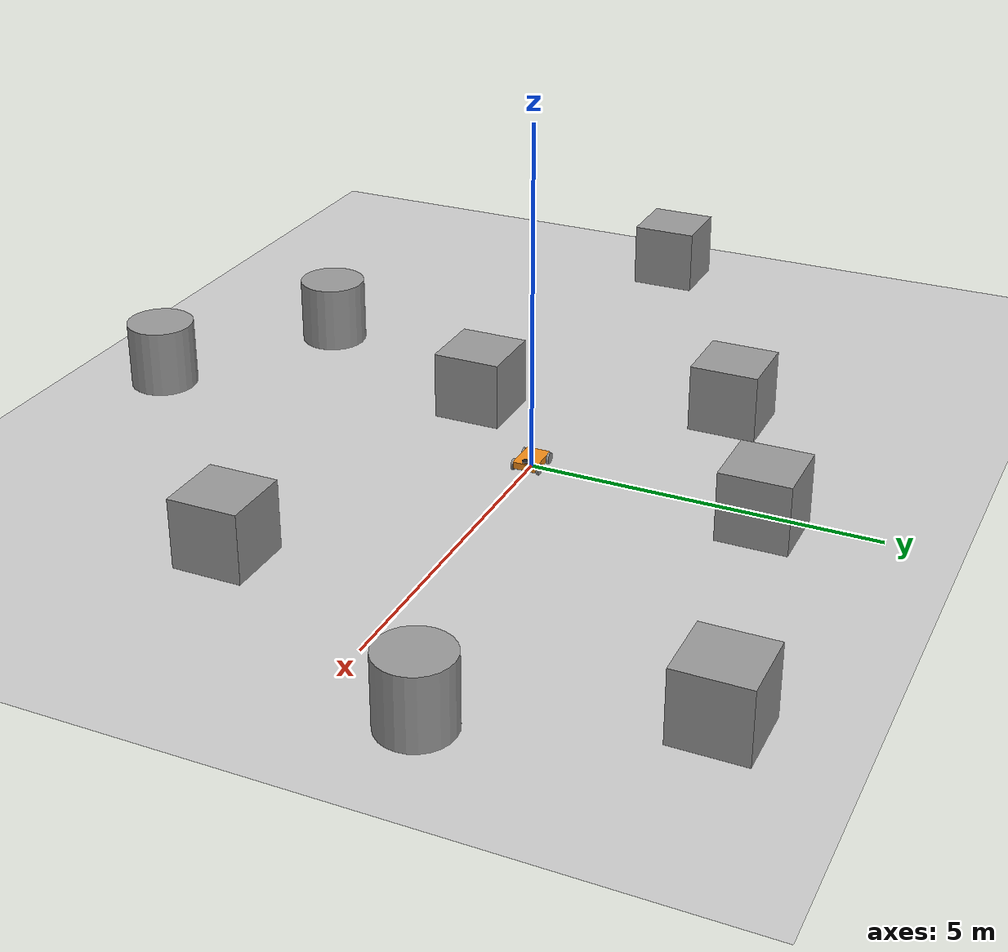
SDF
<sdf version="1.7">
 <world name="default">
  <light name="sun" type="directional">
   <pose>0 0 10 0 -0 0</pose>
   <diffuse>0.8 0.8 0.8 1</diffuse>
   <specular>0.2 0.2 0.2 1</specular>
   <attenuation>
    <range>1000</range>
    <constant>0.9</constant>
    <linear>0.01</linear>
    <quadratic>0.001</quadratic>
   </attenuation>
   <direction>-0.5 0.1 -0.9</direction>
   <spot><inner_angle>0</inner_angle><outer_angle>0</outer_angle><falloff>0</falloff></spot>
  </light>
  <model name="ground_plane">
   <static>1</static>
   <link name="link">
    <collision name="collision">
     <geometry><plane><normal>0 0 1</normal><size>100 100</size></plane></geometry>
     <surface>
      <contact><collide_bitmask>65535</collide_bitmask></contact>
      <friction><ode><mu>100</mu><mu2>50</mu2></ode></friction>
     </surface>
    </collision>
    <visual name="visual">
     <cast_shadows>0</cast_shadows>
     <geometry><plane><normal>0 0 1</normal><size>100 100</size></plane></geometry>
     <material>
      <script><uri>file://media/materials/scripts/gazebo.material</uri><name>Gazebo/Grey</name></script>
     </material>
    </visual>
   </link>
  </model>
  <gravity>0 0 -9.8</gravity>
  <magnetic_field>6e-06 2.3e-05 -4.2e-05</magnetic_field>
  <atmosphere type="adiabatic"/>
  <physics type="ode">
   <max_step_size>0.001</max_step_size>
   <real_time_factor>1</real_time_factor>
   <real_time_update_rate>1000</real_time_update_rate>
  </physics>
  <scene><ambient>0.4 0.4 0.4 1</ambient><background>0.7 0.7 0.7 1</background><shadows>1</shadows></scene>
  <audio><device>default</device></audio>
  <spherical_coordinates>
   <surface_model>EARTH_WGS84</surface_model>
   <latitude_deg>0</latitude_deg>
   <longitude_deg>0</longitude_deg>
   <elevation>0</elevation>
   <heading_deg>0</heading_deg>
  </spherical_coordinates>
  <model name="my_bot">
   <link name="base_footprint">
    <inertial>
     <pose>0.007692 0 0.102692 0 -0 0</pose>
     <mass>5.2</mass>
     <inertia>
      <ixx>0.109407</ixx>
      <ixy>0</ixy>
      <ixz>-0.00269231</ixz>
      <iyy>0.163975</iyy>
      <iyz>0</iyz>
      <izz>0.0631506</izz>
     </inertia>
    </inertial>
    <collision name="base_footprint_fixed_joint_lump__base_link_collision">
     <pose>0 0 0.1 0 -0 0</pose>
     <geometry><box><size>0.5 0.35 0.1</size></box></geometry>
    </collision>
    <collision name="base_footprint_fixed_joint_lump__laser_frame_collision_1">
     <pose>0.2 0 0.17 0 -0 0</pose>
     <geometry><cylinder><length>0.02</length><radius>0.05</radius></cylinder></geometry>
    </collision>
    <visual name="base_footprint_fixed_joint_lump__base_link_visual">
     <pose>0 0 0.1 0 -0 0</pose>
     <geometry><box><size>0.5 0.35 0.1</size></box></geometry>
     <material>
      <script><name>Gazebo/Orange</name><uri>file://media/materials/scripts/gazebo.material</uri></script>
     </material>
    </visual>
    <visual name="base_footprint_fixed_joint_lump__laser_frame_visual_1">
     <pose>0.2 0 0.17 0 -0 0</pose>
     <geometry><cylinder><length>0.02</length><radius>0.05</radius></cylinder></geometry>
     <material>
      <script><name>Gazebo/Black</name><uri>file://media/materials/scripts/gazebo.material</uri></script>
     </material>
    </visual>
    <sensor name="lidar_sensor" type="ray">
     <visualize>1</visualize>
     <update_rate>10</update_rate>
     <ray>
      <scan>
       <horizontal>
        <samples>360</samples>
        <min_angle>-3.14</min_angle>
        <max_angle>3.14</max_angle>
        <resolution>1</resolution>
       </horizontal>
       <vertical><samples>1</samples><min_angle>0</min_angle><max_angle>0</max_angle></vertical>
      </scan>
      <range><min>0.1</min><max>10</max></range>
     </ray>
     <plugin name="laser_controller" filename="libgazebo_ros_ray_sensor.so">
      <ros><argument>~/out:=scan</argument></ros>
      <output_type>sensor_msgs/LaserScan</output_type>
      <frame_name>laser_frame</frame_name>
     </plugin>
     <pose>0.2 0 0.17 0 -0 0</pose>
    </sensor>
   </link>
   <joint name="base_left_wheel_f_joint" type="revolute">
    <pose relative_to="base_footprint">0.18 0.19 0.08 0 -0 0</pose>
    <parent>base_footprint</parent>
    <child>left_f_wheel_link</child>
    <axis>
     <xyz>0 1 0</xyz>
     <limit><lower>-1e+16</lower><upper>1e+16</upper></limit>
     <dynamics><spring_reference>0</spring_reference><spring_stiffness>0</spring_stiffness></dynamics>
    </axis>
   </joint>
   <link name="left_f_wheel_link">
    <pose relative_to="base_left_wheel_f_joint">0 0 0 0 -0 0</pose>
    <inertial>
     <pose>0 0 0 1.5708 -0 0</pose>
     <mass>0.5</mass>
     <inertia>
      <ixx>0.0008375</ixx>
      <ixy>0</ixy>
      <ixz>0</ixz>
      <iyy>0.0008375</iyy>
      <iyz>0</iyz>
      <izz>0.0016</izz>
     </inertia>
    </inertial>
    <collision name="left_f_wheel_link_collision">
     <pose>0 0 0 1.5708 -0 0</pose>
     <geometry><cylinder><length>0.03</length><radius>0.08</radius></cylinder></geometry>
    </collision>
    <visual name="left_f_wheel_link_visual">
     <pose>0 0 0 1.5708 -0 0</pose>
     <geometry><cylinder><length>0.03</length><radius>0.08</radius></cylinder></geometry>
     <material>
      <script><name>Gazebo/Gray</name><uri>file://media/materials/scripts/gazebo.material</uri></script>
     </material>
    </visual>
   </link>
   <joint name="base_left_wheel_r_joint" type="revolute">
    <pose relative_to="base_footprint">-0.18 0.19 0.08 0 -0 0</pose>
    <parent>base_footprint</parent>
    <child>left_r_wheel_link</child>
    <axis>
     <xyz>0 1 0</xyz>
     <limit><lower>-1e+16</lower><upper>1e+16</upper></limit>
     <dynamics><spring_reference>0</spring_reference><spring_stiffness>0</spring_stiffness></dynamics>
    </axis>
   </joint>
   <link name="left_r_wheel_link">
    <pose relative_to="base_left_wheel_r_joint">0 0 0 0 -0 0</pose>
    <inertial>
     <pose>0 0 0 1.5708 -0 0</pose>
     <mass>0.5</mass>
     <inertia>
      <ixx>0.0008375</ixx>
      <ixy>0</ixy>
      <ixz>0</ixz>
      <iyy>0.0008375</iyy>
      <iyz>0</iyz>
      <izz>0.0016</izz>
     </inertia>
    </inertial>
    <collision name="left_r_wheel_link_collision">
     <pose>0 0 0 1.5708 -0 0</pose>
     <geometry><cylinder><length>0.03</length><radius>0.08</radius></cylinder></geometry>
    </collision>
    <visual name="left_r_wheel_link_visual">
     <pose>0 0 0 1.5708 -0 0</pose>
     <geometry><cylinder><length>0.03</length><radius>0.08</radius></cylinder></geometry>
     <material>
      <script><name>Gazebo/Gray</name><uri>file://media/materials/scripts/gazebo.material</uri></script>
     </material>
    </visual>
   </link>
   <joint name="base_right_wheel_f_joint" type="revolute">
    <pose relative_to="base_footprint">0.18 -0.19 0.08 0 -0 0</pose>
    <parent>base_footprint</parent>
    <child>right_f_wheel_link</child>
    <axis>
     <xyz>0 1 0</xyz>
     <limit><lower>-1e+16</lower><upper>1e+16</upper></limit>
     <dynamics><spring_reference>0</spring_reference><spring_stiffness>0</spring_stiffness></dynamics>
    </axis>
   </joint>
   <link name="right_f_wheel_link">
    <pose relative_to="base_right_wheel_f_joint">0 0 0 0 -0 0</pose>
    <inertial>
     <pose>0 0 0 1.5708 -0 0</pose>
     <mass>0.5</mass>
     <inertia>
      <ixx>0.0008375</ixx>
      <ixy>0</ixy>
      <ixz>0</ixz>
      <iyy>0.0008375</iyy>
      <iyz>0</iyz>
      <izz>0.0016</izz>
     </inertia>
    </inertial>
    <collision name="right_f_wheel_link_collision">
     <pose>0 0 0 1.5708 -0 0</pose>
     <geometry><cylinder><length>0.03</length><radius>0.08</radius></cylinder></geometry>
    </collision>
    <visual name="right_f_wheel_link_visual">
     <pose>0 0 0 1.5708 -0 0</pose>
     <geometry><cylinder><length>0.03</length><radius>0.08</radius></cylinder></geometry>
     <material>
      <script><name>Gazebo/Gray</name><uri>file://media/materials/scripts/gazebo.material</uri></script>
     </material>
    </visual>
   </link>
   <joint name="base_right_wheel_r_joint" type="revolute">
    <pose relative_to="base_footprint">-0.18 -0.19 0.08 0 -0 0</pose>
    <parent>base_footprint</parent>
    <child>right_r_wheel_link</child>
    <axis>
     <xyz>0 1 0</xyz>
     <limit><lower>-1e+16</lower><upper>1e+16</upper></limit>
     <dynamics><spring_reference>0</spring_reference><spring_stiffness>0</spring_stiffness></dynamics>
    </axis>
   </joint>
   <link name="right_r_wheel_link">
    <pose relative_to="base_right_wheel_r_joint">0 0 0 0 -0 0</pose>
    <inertial>
     <pose>0 0 0 1.5708 -0 0</pose>
     <mass>0.5</mass>
     <inertia>
      <ixx>0.0008375</ixx>
      <ixy>0</ixy>
      <ixz>0</ixz>
      <iyy>0.0008375</iyy>
      <iyz>0</iyz>
      <izz>0.0016</izz>
     </inertia>
    </inertial>
    <collision name="right_r_wheel_link_collision">
     <pose>0 0 0 1.5708 -0 0</pose>
     <geometry><cylinder><length>0.03</length><radius>0.08</radius></cylinder></geometry>
    </collision>
    <visual name="right_r_wheel_link_visual">
     <pose>0 0 0 1.5708 -0 0</pose>
     <geometry><cylinder><length>0.03</length><radius>0.08</radius></cylinder></geometry>
     <material>
      <script><name>Gazebo/Gray</name><uri>file://media/materials/scripts/gazebo.material</uri></script>
     </material>
    </visual>
   </link>
   <plugin name="front_wheel" filename="libgazebo_ros_diff_drive.so">
    <left_joint>base_left_wheel_f_joint</left_joint>
    <right_joint>base_right_wheel_f_joint</right_joint>
    <wheel_separation>0.64</wheel_separation>
    <wheel_diameter>0.16</wheel_diameter>
    <max_wheel_torque>200</max_wheel_torque>
    <max_wheel_acceleration>10.0</max_wheel_acceleration>
    <odometry_frame>odom</odometry_frame>
    <robot_base_frame>base_footprint</robot_base_frame>
    <publish_odom>1</publish_odom>
    <publish_odom_tf>1</publish_odom_tf>
    <publish_wheel_tf>1</publish_wheel_tf>
   </plugin>
   <static>0</static>
   <plugin name="rear_wheel" filename="libgazebo_ros_diff_drive.so">
    <left_joint>base_left_wheel_r_joint</left_joint>
    <right_joint>base_right_wheel_r_joint</right_joint>
    <wheel_separation>0.64</wheel_separation>
    <wheel_diameter>0.16</wheel_diameter>
    <max_wheel_torque>200</max_wheel_torque>
    <max_wheel_acceleration>10.0</max_wheel_acceleration>
    <odometry_frame>odom</odometry_frame>
    <robot_base_frame>base_footprint</robot_base_frame>
    <publish_odom>1</publish_odom>
    <publish_odom_tf>1</publish_odom_tf>
    <publish_wheel_tf>1</publish_wheel_tf>
   </plugin>
   <pose>0.001885 -0.000593 0 0 -0 2e-05</pose>
  </model>
  <model name="unit_box">
   <pose>-1.3318 -1.41587 0.499995 0 1e-05 0</pose>
   <link name="link">
    <inertial>
     <mass>1</mass>
     <inertia>
      <ixx>0.166667</ixx>
      <ixy>0</ixy>
      <ixz>0</ixz>
      <iyy>0.166667</iyy>
      <iyz>0</iyz>
      <izz>0.166667</izz>
     </inertia>
    </inertial>
    <collision name="collision"><geometry><box><size>1 1 1</size></box></geometry></collision>
    <visual name="visual">
     <geometry><box><size>1 1 1</size></box></geometry>
     <material>
      <script><name>Gazebo/Grey</name><uri>file://media/materials/scripts/gazebo.material</uri></script>
     </material>
    </visual>
   </link>
  </model>
  <model name="unit_box_0">
   <pose>-2.48071 2.10318 0.499995 -1e-05 -0 -0</pose>
   <link name="link">
    <inertial>
     <mass>1</mass>
     <inertia>
      <ixx>0.166667</ixx>
      <ixy>0</ixy>
      <ixz>0</ixz>
      <iyy>0.166667</iyy>
      <iyz>0</iyz>
      <izz>0.166667</izz>
     </inertia>
    </inertial>
    <collision name="collision"><geometry><box><size>1 1 1</size></box></geometry></collision>
    <visual name="visual">
     <geometry><box><size>1 1 1</size></box></geometry>
     <material>
      <script><name>Gazebo/Grey</name><uri>file://media/materials/scripts/gazebo.material</uri></script>
     </material>
    </visual>
   </link>
  </model>
  <model name="unit_box_1">
   <pose>0.365259 3.46018 0.499995 0 1e-05 0</pose>
   <link name="link">
    <inertial>
     <mass>1</mass>
     <inertia>
      <ixx>0.166667</ixx>
      <ixy>0</ixy>
      <ixz>0</ixz>
      <iyy>0.166667</iyy>
      <iyz>0</iyz>
      <izz>0.166667</izz>
     </inertia>
    </inertial>
    <collision name="collision"><geometry><box><size>1 1 1</size></box></geometry></collision>
    <visual name="visual">
     <geometry><box><size>1 1 1</size></box></geometry>
     <material>
      <script><name>Gazebo/Grey</name><uri>file://media/materials/scripts/gazebo.material</uri></script>
     </material>
    </visual>
   </link>
  </model>
  <model name="unit_box_2">
   <pose>-7.35257 -0.580079 0.499995 -1e-05 -0 -0</pose>
   <link name="link">
    <inertial>
     <mass>1</mass>
     <inertia>
      <ixx>0.166667</ixx>
      <ixy>0</ixy>
      <ixz>0</ixz>
      <iyy>0.166667</iyy>
      <iyz>0</iyz>
      <izz>0.166667</izz>
     </inertia>
    </inertial>
    <collision name="collision"><geometry><box><size>1 1 1</size></box></geometry></collision>
    <visual name="visual">
     <geometry><box><size>1 1 1</size></box></geometry>
     <material>
      <script><name>Gazebo/Grey</name><uri>file://media/materials/scripts/gazebo.material</uri></script>
     </material>
    </visual>
   </link>
  </model>
  <model name="unit_box_3">
   <pose>3.86302 -2.54752 0.499995 0 1e-05 0</pose>
   <link name="link">
    <inertial>
     <mass>1</mass>
     <inertia>
      <ixx>0.166667</ixx>
      <ixy>0</ixy>
      <ixz>0</ixz>
      <iyy>0.166667</iyy>
      <iyz>0</iyz>
      <izz>0.166667</izz>
     </inertia>
    </inertial>
    <collision name="collision"><geometry><box><size>1 1 1</size></box></geometry></collision>
    <visual name="visual">
     <geometry><box><size>1 1 1</size></box></geometry>
     <material>
      <script><name>Gazebo/Grey</name><uri>file://media/materials/scripts/gazebo.material</uri></script>
     </material>
    </visual>
   </link>
  </model>
  <model name="unit_box_4">
   <pose>4.71354 4.35884 0.499995 -1e-05 -0 -0</pose>
   <link name="link">
    <inertial>
     <mass>1</mass>
     <inertia>
      <ixx>0.166667</ixx>
      <ixy>0</ixy>
      <ixz>0</ixz>
      <iyy>0.166667</iyy>
      <iyz>0</iyz>
      <izz>0.166667</izz>
     </inertia>
    </inertial>
    <collision name="collision"><geometry><box><size>1 1 1</size></box></geometry></collision>
    <visual name="visual">
     <geometry><box><size>1 1 1</size></box></geometry>
     <material>
      <script><name>Gazebo/Grey</name><uri>file://media/materials/scripts/gazebo.material</uri></script>
     </material>
    </visual>
   </link>
  </model>
  <model name="unit_cylinder">
   <pose>-2.67518 -4.64758 0.499997 3e-06 4e-06 -0</pose>
   <link name="link">
    <inertial>
     <mass>1</mass>
     <inertia><ixx>0.145833</ixx><ixy>0</ixy><ixz>0</ixz><iyy>0.145833</iyy><iyz>0</iyz><izz>0.125</izz></inertia>
    </inertial>
    <collision name="collision">
     <geometry><cylinder><radius>0.5</radius><length>1</length></cylinder></geometry>
    </collision>
    <visual name="visual">
     <geometry><cylinder><radius>0.5</radius><length>1</length></cylinder></geometry>
     <material>
      <script><name>Gazebo/Grey</name><uri>file://media/materials/scripts/gazebo.material</uri></script>
     </material>
    </visual>
   </link>
  </model>
  <model name="unit_cylinder_0">
   <pose>-0.160359 -6.20596 0.499993 -3e-06 -4e-06 -0</pose>
   <link name="link">
    <inertial>
     <mass>1</mass>
     <inertia><ixx>0.145833</ixx><ixy>0</ixy><ixz>0</ixz><iyy>0.145833</iyy><iyz>0</iyz><izz>0.125</izz></inertia>
    </inertial>
    <collision name="collision">
     <geometry><cylinder><radius>0.5</radius><length>1</length></cylinder></geometry>
    </collision>
    <visual name="visual">
     <geometry><cylinder><radius>0.5</radius><length>1</length></cylinder></geometry>
     <material>
      <script><name>Gazebo/Grey</name><uri>file://media/materials/scripts/gazebo.material</uri></script>
     </material>
    </visual>
   </link>
  </model>
  <model name="unit_cylinder_1">
   <pose>6.04108 1.271 0.499997 3e-06 4e-06 -0</pose>
   <link name="link">
    <inertial>
     <mass>1</mass>
     <inertia><ixx>0.145833</ixx><ixy>0</ixy><ixz>0</ixz><iyy>0.145833</iyy><iyz>0</iyz><izz>0.125</izz></inertia>
    </inertial>
    <collision name="collision">
     <geometry><cylinder><radius>0.5</radius><length>1</length></cylinder></geometry>
    </collision>
    <visual name="visual">
     <geometry><cylinder><radius>0.5</radius><length>1</length></cylinder></geometry>
     <material>
      <script><name>Gazebo/Grey</name><uri>file://media/materials/scripts/gazebo.material</uri></script>
     </material>
    </visual>
   </link>
  </model>
 </world>
</sdf>
